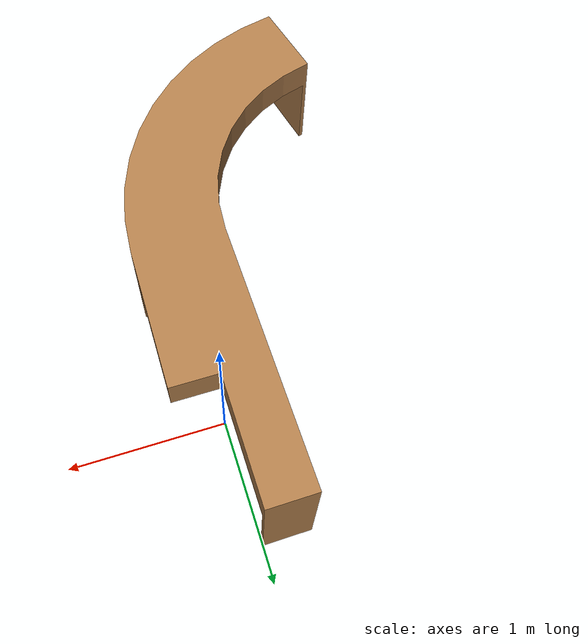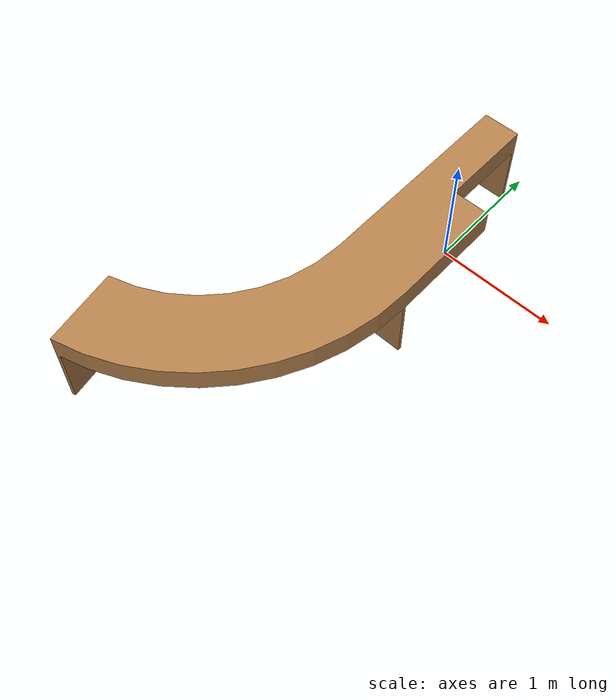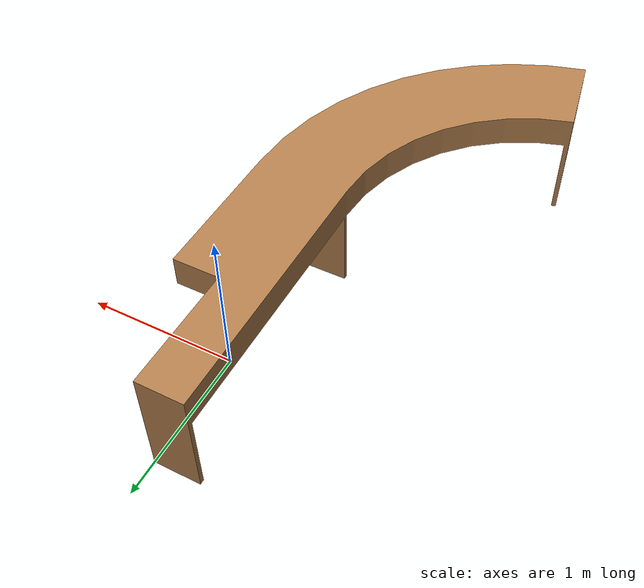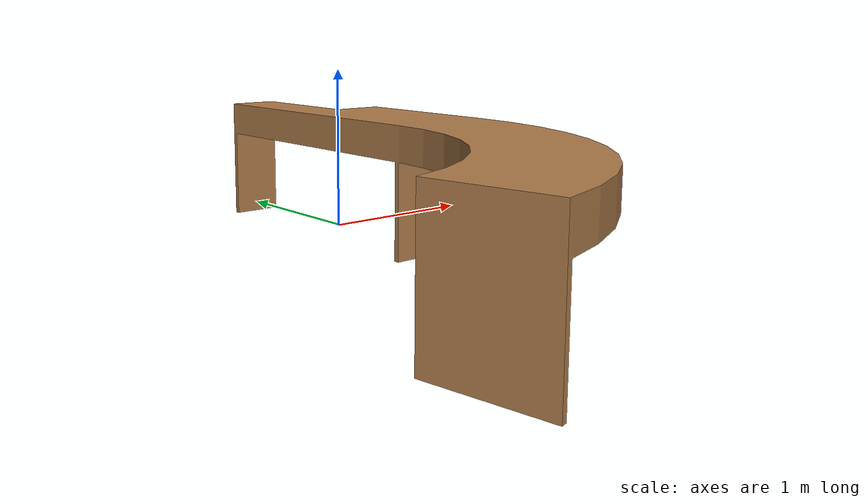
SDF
<sdf version='1.7'>
  <model name='Officedesk_RL'>
    <link name='Officedesk_RL'>
      <inertial>
        <pose>-0.29734 -1.2465 0.62911 0 -0 0</pose>
        <mass>449</mass>
        <inertia>
          <ixx>418.05</ixx>
          <ixy>116.78</ixy>
          <ixz>2.148</ixz>
          <iyy>79.097</iyy>
          <iyz>-0.25232</iyz>
          <izz>486.41</izz>
        </inertia>
      </inertial>
      <collision name='Officedesk_RL_collision'>
        <pose>0 0 0 0 -0 0</pose>
        <geometry>
          <mesh>
            <scale>1 1 1</scale>
            <uri>model://Officedesk_RL/meshes/Officedesk_RL.STL</uri>
          </mesh>
        </geometry>
      </collision>
      <visual name='Officedesk_RL_visual'>
        <pose>0 0 0 0 -0 0</pose>
        <geometry>
          <mesh>
            <scale>1 1 1</scale>
            <uri>model://Officedesk_RL/meshes/Officedesk_RL.STL</uri>
          </mesh>
        </geometry>
        <material>
          <script>
            <uri>file://media/materials/scripts/gazebo.material</uri>
            <name>Gazebo/Wood</name>
          </script>
        </material>
      </visual>
    </link>
  </model>
</sdf>
